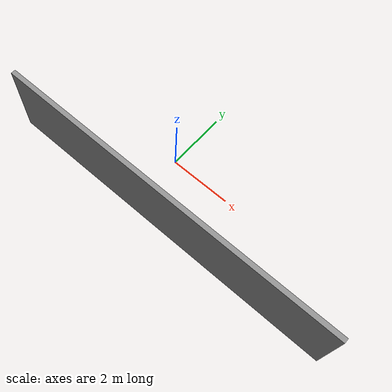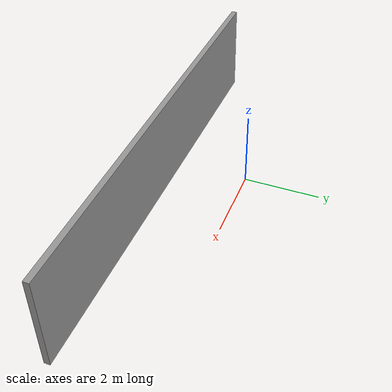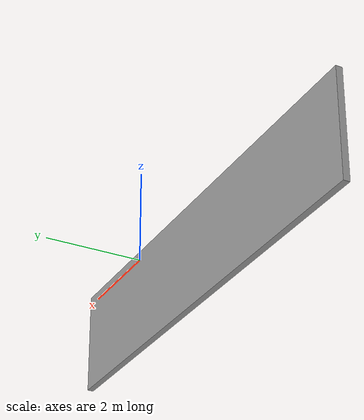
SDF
<?xml version='1.0'?>
<sdf version='1.7'>
  <model name='test'>
    <pose>1.17 -1.0075 0 0 -0 0</pose>
    <link name='Wall_1'>
      <collision name='Wall_1_Collision'>
        <geometry>
          <box>
            <size>11.25 0.15 2.5</size>
          </box>
        </geometry>
        <pose>0 0 1.25 0 -0 0</pose>
      </collision>
      <visual name='Wall_1_Visual'>
        <pose>0 0 1.25 0 -0 0</pose>
        <geometry>
          <box>
            <size>11.25 0.15 2.5</size>
          </box>
        </geometry>
        <material>
          <script>
            <uri>file://media/materials/scripts/gazebo.material</uri>
            <name>Gazebo/Grey</name>
          </script>
          <ambient>1 1 1 1</ambient>
        </material>
        <meta>
          <layer>0</layer>
        </meta>
      </visual>
      <pose>-0 -0.9325 0 0 -0 0</pose>
    </link>
    <static>1</static>
  </model>
</sdf>
